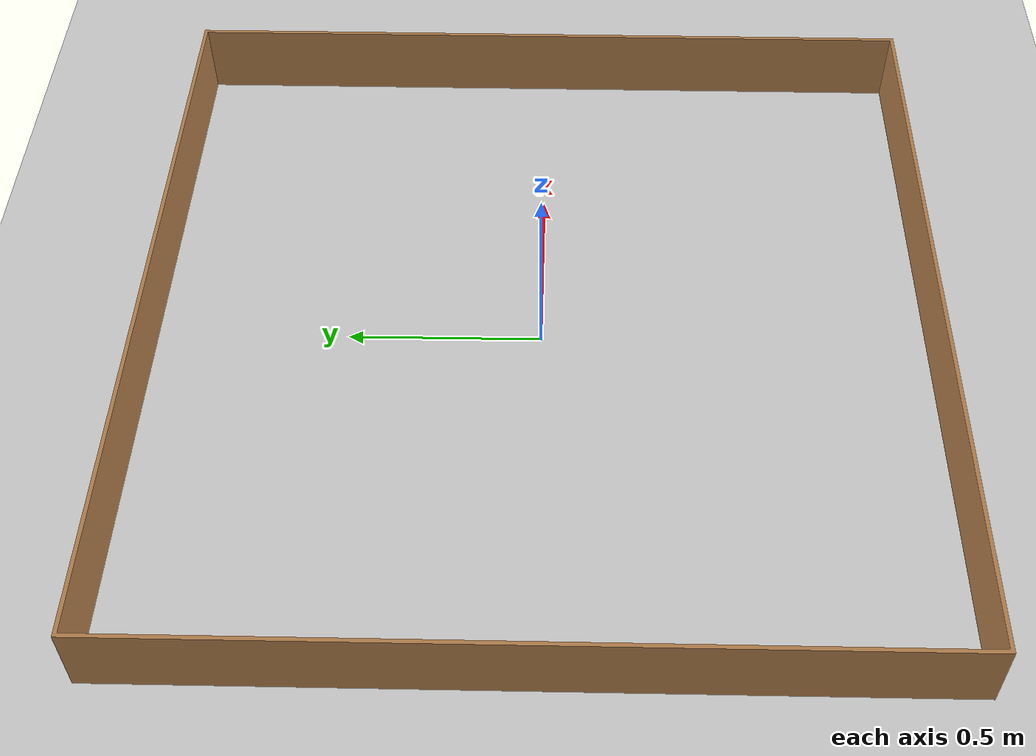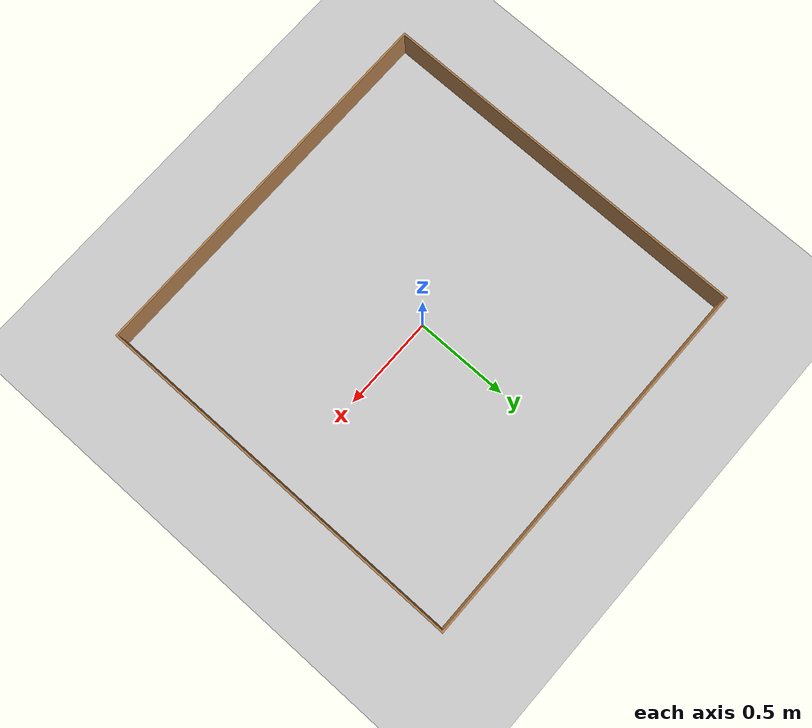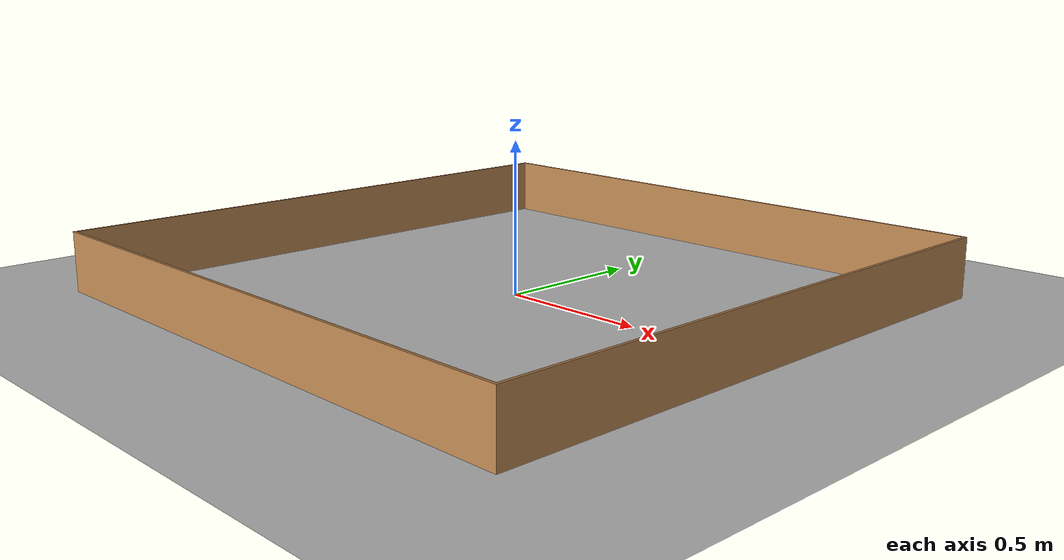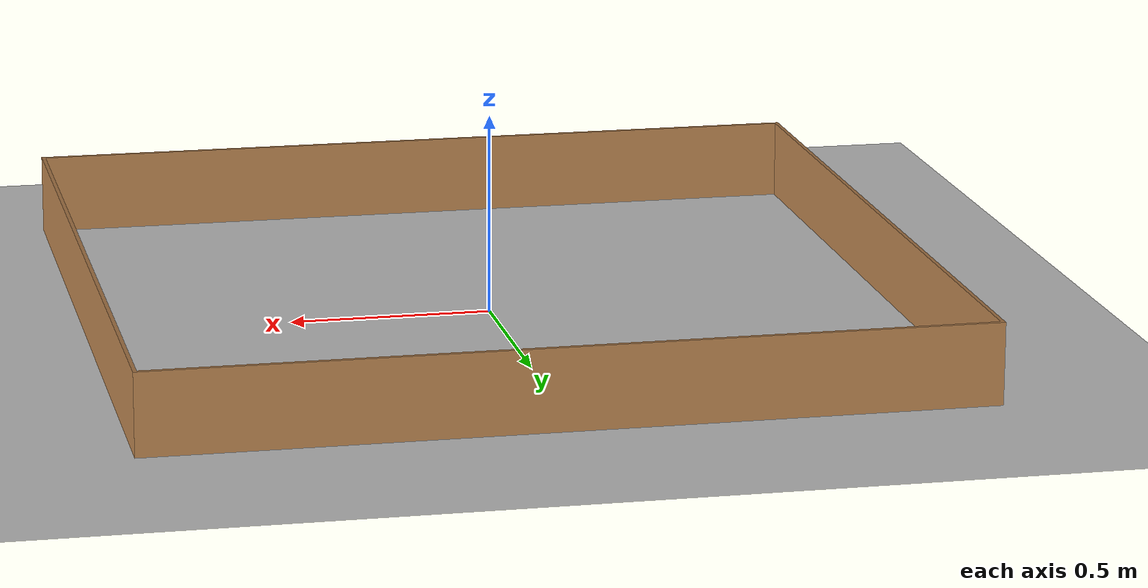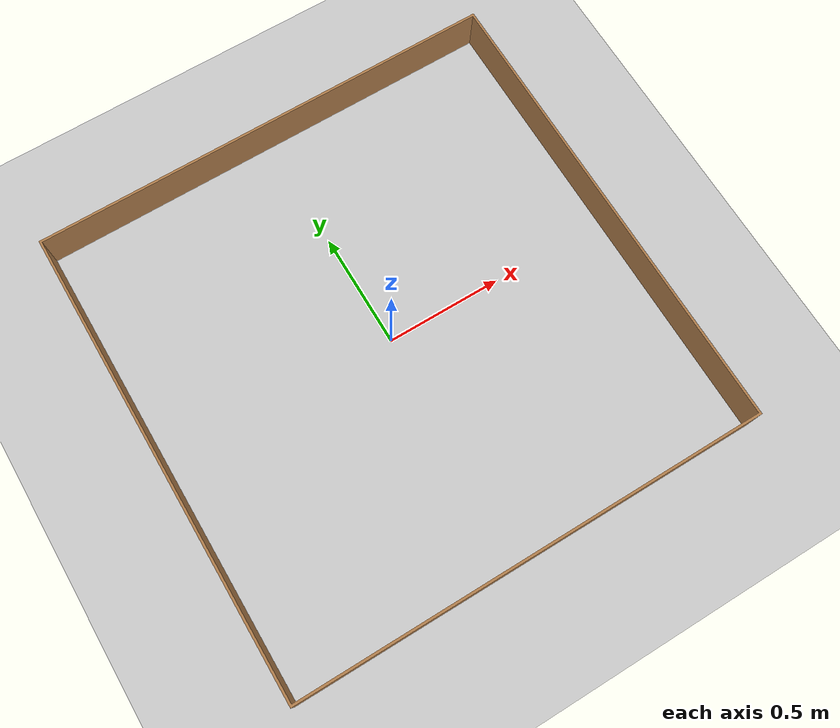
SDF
<?xml version="1.0"?>
<sdf version="1.6">
  <world name="default">
    <include>
      <uri>model://ground_plane</uri>
    </include>
    <include>
      <uri>model://sun</uri>
    </include>
    <scene>
      <shadows>false</shadows>
    </scene>
    <gui fullscreen='0'>
      <camera name='user_camera'>
        <pose frame=''>0 0.6 0.1 0 0 -1.57</pose>
        <view_controller>orbit</view_controller>
        <projection_type>perspective</projection_type>
      </camera>
    </gui>
    <physics type="ode">
      <real_time_update_rate>1000.0</real_time_update_rate>
      <max_step_size>0.001</max_step_size>
      <real_time_factor>1</real_time_factor>
      <ode>
        <solver>
          <type>quick</type>
          <iters>150</iters>
          <precon_iters>0</precon_iters>
          <sor>1.400000</sor>
          <use_dynamic_moi_rescaling>1</use_dynamic_moi_rescaling>
        </solver>
        <constraints>
          <cfm>0.00001</cfm>
          <erp>0.2</erp>
          <contact_max_correcting_vel>2000.000000</contact_max_correcting_vel>
          <contact_surface_layer>0.01000</contact_surface_layer>
        </constraints>
      </ode>
    </physics>
    <model name="box_world">
      <static>1</static>
      <include>
        <uri>model://box_world</uri>
      </include>
    </model>
  </world>
</sdf>

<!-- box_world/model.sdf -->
<sdf version='1.6'>
  <model name='bounding_box'>
    <pose frame=''>0 0 0 0 0 0</pose>
    <link name='box_1'>
      <collision name='box_1_collision'>
        <geometry>
          <mesh>
            <uri>model://common/meshes/box.stl</uri>
            <scale>0.001 0.001 0.001</scale>
          </mesh>
        </geometry>
        <pose frame=''>-1.01 -1.01 0 0 0 0</pose>
      </collision>
      <visual name='box_1_visual'>
        <pose frame=''>-1.01 -1.01 0 0 0 0</pose>
        <geometry>
          <mesh>
            <uri>model://common/meshes/box.stl</uri>
            <scale>0.001 0.001 0.001</scale>
          </mesh>
        </geometry>
        <material>
          <script>
            <uri>file://media/materials/scripts/gazebo.material</uri>
            <name>Gazebo/Wood</name>
          </script>
          <ambient>1 1 1 1</ambient>
        </material>
      </visual>
      <pose frame=''>0 0 0 0 0 0</pose>
    </link>
    <static>1</static>
  </model>
</sdf>
